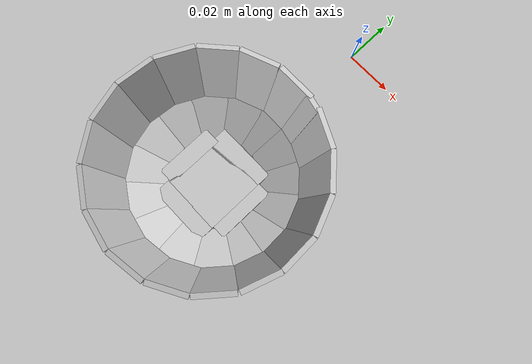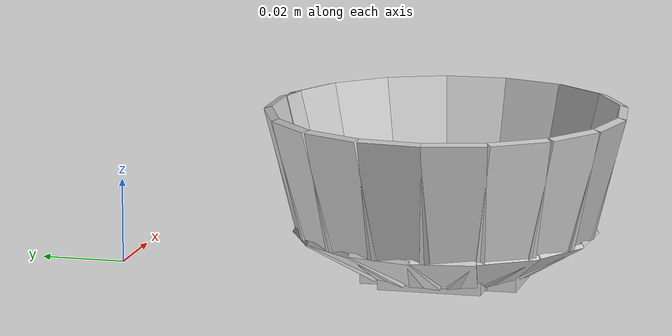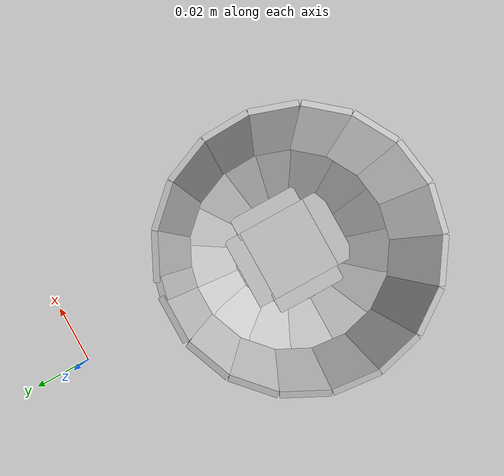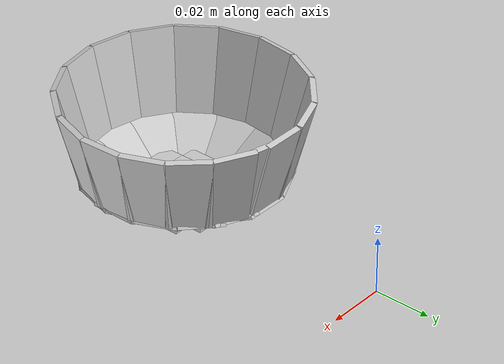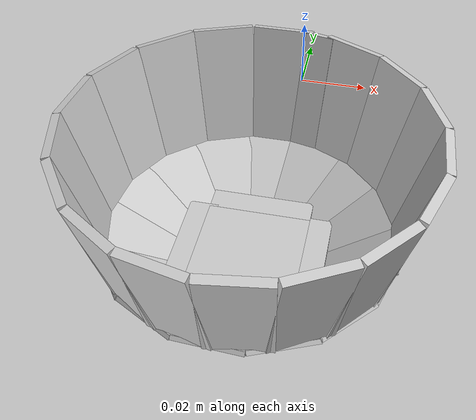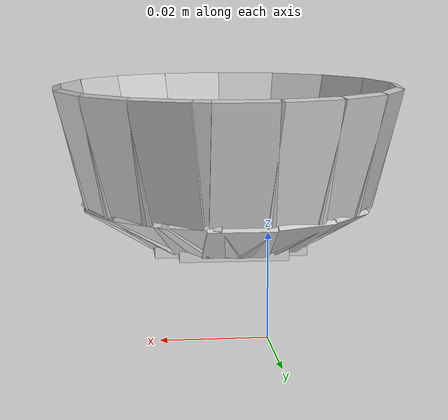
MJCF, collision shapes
<?xml version='1.0' encoding='utf-8'?>
<mujoco model="akita_black_bowl">
  <asset>
  <texture file="texture.png" name="tex-akita_black_bowl" type="2d" />
  <material name="akita_black_bowl" reflectance="0.5" texrepeat="1 1" texture="tex-akita_black_bowl" texuniform="false" />
  <mesh file="visual/akita_bowl_vis.msh" name="akita_black_bowl_vis" scale="0.55 0.55 0.55" /></asset>
  <worldbody>
    <body>
      <body name="object" pos="0.0 -0.07857 0.0">
      <geom solimp="0.998 0.998 0.001" solref="0.001 1" density="100" friction="0.95 0.3 0.1" type="mesh" mesh="akita_black_bowl_vis" conaffinity="0" contype="0" group="1" material="akita_black_bowl" /><geom solimp="0.998 0.998 0.001" solref="0.001 1" density="100" friction="0.95 0.3 0.1" type="box" pos="-7.857e-05 0.026407377 0.007377723" quat="0.60990 -0.35780 -0.35780 -0.60990" size="0.000557847 0.007794143999999999 0.009326259" group="0" rgba="0.8 0.8 0.8 0.3" /><geom solimp="0.998 0.998 0.001" solref="0.001 1" density="100" friction="0.95 0.3 0.1" type="box" pos="-0.011541932999999999 0.023704568999999998 0.007534862999999999" quat="0.45959 -0.42672 0.26704 0.73169" size="0.000557847 0.007794143999999999 0.009326259" group="0" rgba="0.8 0.8 0.8 0.3" /><geom solimp="0.998 0.998 0.001" solref="0.001 1" density="100" friction="0.95 0.3 0.1" type="box" pos="-0.020467485 0.016562556 0.007660574999999999" quat="0.29172 -0.47299 0.16619 0.81459" size="0.000557847 0.007794143999999999 0.009326259" group="0" rgba="0.8 0.8 0.8 0.3" /><geom solimp="0.998 0.998 0.001" solref="0.001 1" density="100" friction="0.95 0.3 0.1" type="box" pos="-0.025558821000000002 0.006230601 0.007731287999999999" quat="0.10855 -0.49698 0.05658 0.85908" size="0.000557847 0.007794143999999999 0.009326259" group="0" rgba="0.8 0.8 0.8 0.3" /><geom solimp="0.998 0.998 0.001" solref="0.001 1" density="100" friction="0.95 0.3 0.1" type="box" pos="-0.025825959000000002 -0.004989194999999999 0.007731287999999999" quat="0.49761 -0.07722 0.86246 0.05074" size="0.000557847 0.007794143999999999 0.009326259" group="0" rgba="0.8 0.8 0.8 0.3" /><geom solimp="0.998 0.998 0.001" solref="0.001 1" density="100" friction="0.95 0.3 0.1" type="box" pos="-0.021151043999999997 -0.01563543 0.007731287999999999" quat="0.47408 -0.26597 0.82406 0.15949" size="0.000557847 0.007794143999999999 0.009326259" group="0" rgba="0.8 0.8 0.8 0.3" /><geom solimp="0.998 0.998 0.001" solref="0.001 1" density="100" friction="0.95 0.3 0.1" type="box" pos="-0.012233349 -0.023288147999999998 0.007731287999999999" quat="0.42646 -0.44336 0.74380 0.26138" size="0.000557847 0.007794143999999999 0.009326259" group="0" rgba="0.8 0.8 0.8 0.3" /><geom solimp="0.998 0.998 0.001" solref="0.001 1" density="100" friction="0.95 0.3 0.1" type="box" pos="-0.0009506969999999999 -0.026289521999999996 0.007731287999999999" quat="0.59728 0.35787 0.34946 -0.62695" size="0.000557847 0.007794143999999999 0.009326259" group="0" rgba="0.8 0.8 0.8 0.3" /><geom solimp="0.998 0.998 0.001" solref="0.001 1" density="100" friction="0.95 0.3 0.1" type="box" pos="0.010614806999999999 -0.024065991 0.007731287999999999" quat="0.72249 0.27055 0.42070 -0.47731" size="0.000557847 0.007794143999999999 0.009326259" group="0" rgba="0.8 0.8 0.8 0.3" /><geom solimp="0.998 0.998 0.001" solref="0.001 1" density="100" friction="0.95 0.3 0.1" type="box" pos="0.019823210999999997 -0.017293257 0.007731287999999999" quat="0.17267 -0.80894 0.30891 0.46945" size="0.000557847 0.007794143999999999 0.009326259" group="0" rgba="0.8 0.8 0.8 0.3" /><geom solimp="0.998 0.998 0.001" solref="0.001 1" density="100" friction="0.95 0.3 0.1" type="box" pos="0.025315254 -0.00714987 0.007731287999999999" quat="0.85700 0.06550 0.49588 -0.12397" size="0.000557847 0.007794143999999999 0.009326259" group="0" rgba="0.8 0.8 0.8 0.3" /><geom solimp="0.998 0.998 0.001" solref="0.001 1" density="100" friction="0.95 0.3 0.1" type="box" pos="0.025315254 -0.00714987 0.007731287999999999" quat="0.85700 0.06550 0.49588 -0.12397" size="0.000557847 0.007794143999999999 0.009326259" group="0" rgba="0.8 0.8 0.8 0.3" /><geom solimp="0.998 0.998 0.001" solref="0.001 1" density="100" friction="0.95 0.3 0.1" type="box" pos="0.026305236 0.000172854 0.007731287999999999" quat="0.86591 -0.00473 0.50017 -0.00248" size="0.000557847 0.007794143999999999 0.009326259" group="0" rgba="0.8 0.8 0.8 0.3" /><geom solimp="0.998 0.998 0.001" solref="0.001 1" density="100" friction="0.95 0.3 0.1" type="box" pos="0.023853852 0.011086226999999999 0.007731287999999999" quat="0.84663 -0.11101 0.48771 0.18175" size="0.000557847 0.007794143999999999 0.009326259" group="0" rgba="0.8 0.8 0.8 0.3" /><geom solimp="0.998 0.998 0.001" solref="0.001 1" density="100" friction="0.95 0.3 0.1" type="box" pos="0.016939692 0.020129634 0.007731287999999999" quat="0.21392 0.78724 0.36065 -0.45213" size="0.000557847 0.007794143999999999 0.009326259" group="0" rgba="0.8 0.8 0.8 0.3" /><geom solimp="0.998 0.998 0.001" solref="0.001 1" density="100" friction="0.95 0.3 0.1" type="box" pos="0.009090549 0.024686693999999995 0.007731287999999999" quat="0.71324 -0.28870 0.40847 0.49101" size="0.000557847 0.007794143999999999 0.009326259" group="0" rgba="0.8 0.8 0.8 0.3" /><geom solimp="0.998 0.998 0.001" solref="0.001 1" density="100" friction="0.95 0.3 0.1" type="box" pos="-7.857e-05 0.037022184 0.026454518999999996" quat="0.09041 0.70130 0.70130 -0.09041" size="0.001005696 0.007338437999999999 0.014731874999999998" group="0" rgba="0.8 0.8 0.8 0.3" /><geom solimp="0.998 0.998 0.001" solref="0.001 1" density="100" friction="0.95 0.3 0.1" type="box" pos="-0.013545467999999998 0.034452945 0.026454518999999996" quat="0.10558 0.55930 0.81905 -0.07209" size="0.001005696 0.007338437999999999 0.014731874999999998" group="0" rgba="0.8 0.8 0.8 0.3" /><geom solimp="0.998 0.998 0.001" solref="0.001 1" density="100" friction="0.95 0.3 0.1" type="box" pos="-0.024938117999999995 0.027365931 0.026454518999999996" quat="0.11689 0.40164 0.90683 -0.05176" size="0.001005696 0.007338437999999999 0.014731874999999998" group="0" rgba="0.8 0.8 0.8 0.3" /><geom solimp="0.998 0.998 0.001" solref="0.001 1" density="100" friction="0.95 0.3 0.1" type="box" pos="-0.033109398 0.016562556 0.026454518999999996" quat="0.22890 -0.12439 0.02951 0.96502" size="0.001005696 0.007338437999999999 0.014731874999999998" group="0" rgba="0.8 0.8 0.8 0.3" /><geom solimp="0.998 0.998 0.001" solref="0.001 1" density="100" friction="0.95 0.3 0.1" type="box" pos="-0.036841473 0.0036142199999999996 0.026454518999999996" quat="0.12768 0.04949 0.99056 -0.00638" size="0.001005696 0.007338437999999999 0.014731874999999998" group="0" rgba="0.8 0.8 0.8 0.3" /><geom solimp="0.998 0.998 0.001" solref="0.001 1" density="100" friction="0.95 0.3 0.1" type="box" pos="-0.035788635 -0.009459828 0.026454518999999996" quat="0.12679 0.12680 0.01635 -0.98366" size="0.001005696 0.007338437999999999 0.014731874999999998" group="0" rgba="0.8 0.8 0.8 0.3" /><geom solimp="0.998 0.998 0.001" solref="0.001 1" density="100" friction="0.95 0.3 0.1" type="box" pos="-0.030053024999999997 -0.021614606999999997 0.026454518999999996" quat="0.12173 -0.30325 0.94430 0.03909" size="0.001005696 0.007338437999999999 0.014731874999999998" group="0" rgba="0.8 0.8 0.8 0.3" /><geom solimp="0.998 0.998 0.001" solref="0.001 1" density="100" friction="0.95 0.3 0.1" type="box" pos="-0.020239632 -0.031003722 0.026454518999999996" quat="0.11249 -0.47128 0.87267 0.06075" size="0.001005696 0.007338437999999999 0.014731874999999998" group="0" rgba="0.8 0.8 0.8 0.3" /><geom solimp="0.998 0.998 0.001" solref="0.001 1" density="100" friction="0.95 0.3 0.1" type="box" pos="-0.00793557 -0.036157914 0.026454518999999996" quat="0.62080 0.09971 0.08003 -0.77348" size="0.001005696 0.007338437999999999 0.014731874999999998" group="0" rgba="0.8 0.8 0.8 0.3" /><geom solimp="0.998 0.998 0.001" solref="0.001 1" density="100" friction="0.95 0.3 0.1" type="box" pos="0.005484185999999999 -0.03661362 0.026454518999999996" quat="0.75082 0.08352 0.09678 -0.64802" size="0.001005696 0.007338437999999999 0.014731874999999998" group="0" rgba="0.8 0.8 0.8 0.3" /><geom solimp="0.998 0.998 0.001" solref="0.001 1" density="100" friction="0.95 0.3 0.1" type="box" pos="0.018267525 -0.032197986 0.026454518999999996" quat="0.06445 -0.85651 0.50004 0.11041" size="0.001005696 0.007338437999999999 0.014731874999999998" group="0" rgba="0.8 0.8 0.8 0.3" /><geom solimp="0.998 0.998 0.001" solref="0.001 1" density="100" friction="0.95 0.3 0.1" type="box" pos="0.028528767 -0.023594570999999998 0.026454518999999996" quat="0.93283 0.04342 0.12024 -0.33687" size="0.001005696 0.007338437999999999 0.014731874999999998" group="0" rgba="0.8 0.8 0.8 0.3" /><geom solimp="0.998 0.998 0.001" solref="0.001 1" density="100" friction="0.95 0.3 0.1" type="box" pos="0.035160075 -0.011589074999999999 0.026454518999999996" quat="0.02040 -0.97909 0.15826 0.12620" size="0.001005696 0.007338437999999999 0.014731874999999998" group="0" rgba="0.8 0.8 0.8 0.3" /><geom solimp="0.998 0.998 0.001" solref="0.001 1" density="100" friction="0.95 0.3 0.1" type="box" pos="0.03699075599999999 0.0014535449999999999 0.026454518999999996" quat="0.00238 0.99162 0.01844 -0.12782" size="0.001005696 0.007338437999999999 0.014731874999999998" group="0" rgba="0.8 0.8 0.8 0.3" /><geom solimp="0.998 0.998 0.001" solref="0.001 1" density="100" friction="0.95 0.3 0.1" type="box" pos="0.03699075599999999 0.0014535449999999999 0.026454518999999996" quat="0.00238 0.99162 0.01844 -0.12782" size="0.001005696 0.007338437999999999 0.014731874999999998" group="0" rgba="0.8 0.8 0.8 0.3" /><geom solimp="0.998 0.998 0.001" solref="0.001 1" density="100" friction="0.95 0.3 0.1" type="box" pos="0.034107237 0.014394023999999998 0.026454518999999996" quat="0.02524 0.97229 0.19574 -0.12533" size="0.001005696 0.007338437999999999 0.014731874999999998" group="0" rgba="0.8 0.8 0.8 0.3" /><geom solimp="0.998 0.998 0.001" solref="0.001 1" density="100" friction="0.95 0.3 0.1" type="box" pos="0.026839512 0.025495965 0.026454518999999996" quat="0.04729 0.92146 0.36683 -0.11878" size="0.001005696 0.007338437999999999 0.014731874999999998" group="0" rgba="0.8 0.8 0.8 0.3" /><geom solimp="0.998 0.998 0.001" solref="0.001 1" density="100" friction="0.95 0.3 0.1" type="box" pos="0.016240419 0.033266538 0.026454518999999996" quat="0.06760 0.84175 0.52452 -0.10850" size="0.001005696 0.007338437999999999 0.014731874999999998" group="0" rgba="0.8 0.8 0.8 0.3" /><geom solimp="0.998 0.998 0.001" solref="0.001 1" density="100" friction="0.95 0.3 0.1" type="box" pos="0.008296992 0.036079344 0.026454518999999996" quat="0.07953 0.77656 0.61693 -0.10010" size="0.000982125 0.003488508 0.014708304" group="0" rgba="0.8 0.8 0.8 0.3" /><geom solimp="0.998 0.998 0.001" solref="0.001 1" density="100" friction="0.95 0.3 0.1" type="box" pos="-0.0 -0.000589275 0.003276369" quat="0.70711 0.00000 0.70711 0.00000" size="0.002027106 0.012154779 0.012704769" group="0" rgba="0.8 0.8 0.8 0.3" /><geom solimp="0.998 0.998 0.001" solref="0.001 1" density="100" friction="0.95 0.3 0.1" type="box" pos="-0.0 -0.015878997 0.003276369" quat="0.70711 0.00000 0.70711 0.00000" size="0.002027106 0.0033863669999999995 0.012704769" group="0" rgba="0.8 0.8 0.8 0.3" /><geom solimp="0.998 0.998 0.001" solref="0.001 1" density="100" friction="0.95 0.3 0.1" type="box" pos="0.014307597 0.000125712 0.003276369" quat="0.50000 -0.50000 0.50000 0.50000" size="0.002027106 0.003889215 0.012154779" group="0" rgba="0.8 0.8 0.8 0.3" /><geom solimp="0.998 0.998 0.001" solref="0.001 1" density="100" friction="0.95 0.3 0.1" type="box" pos="-0.01422117 3.1428e-05 0.003276369" quat="0.50000 -0.50000 0.50000 0.50000" size="0.002027106 0.003559221 0.012154779" group="0" rgba="0.8 0.8 0.8 0.3" /><geom solimp="0.998 0.998 0.001" solref="0.001 1" density="100" friction="0.95 0.3 0.1" type="box" pos="-0.0 0.011706929999999999 0.003276369" quat="0.00000 0.70711 0.00000 -0.70711" size="0.002027106 0.0058220369999999995 0.012704769" group="0" rgba="0.8 0.8 0.8 0.3" /></body>
      <site rgba="0 0 0 0" size="0.0039285" pos="0.0 0.0 -0.047141999999999996" name="bottom_site" />
      <site rgba="0 0 0 0" size="0.0039285" pos="0.0 0.0 0.031428" name="top_site" />
      <site rgba="0 0 0 0" size="0.0039285" pos="0.0196425 0.0196425 0.0" name="horizontal_radius_site" />
    </body>
  </worldbody>
</mujoco>
